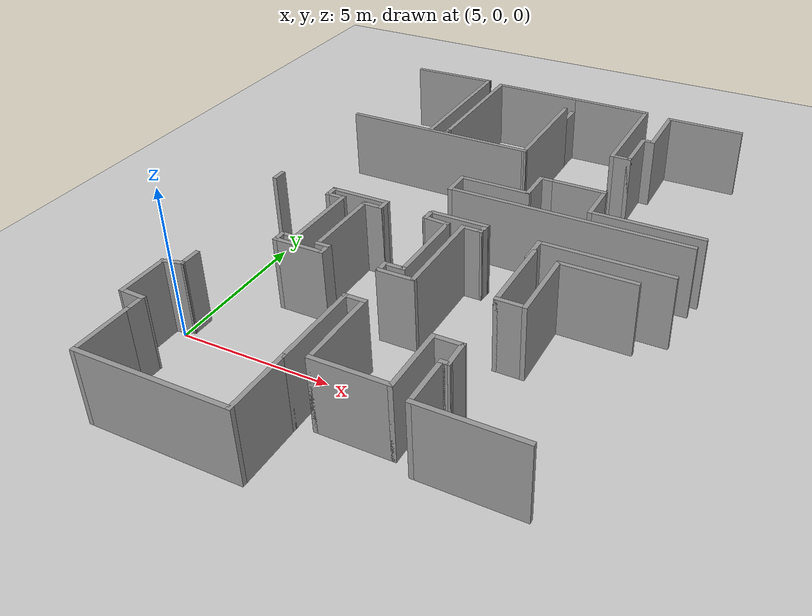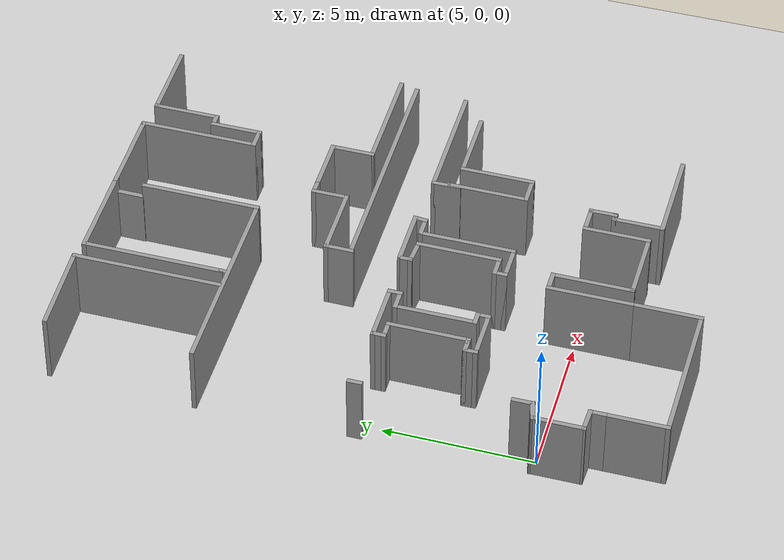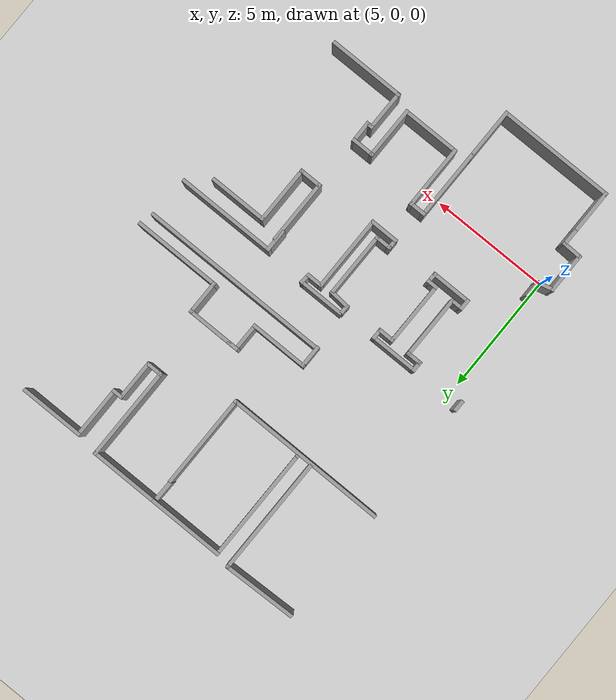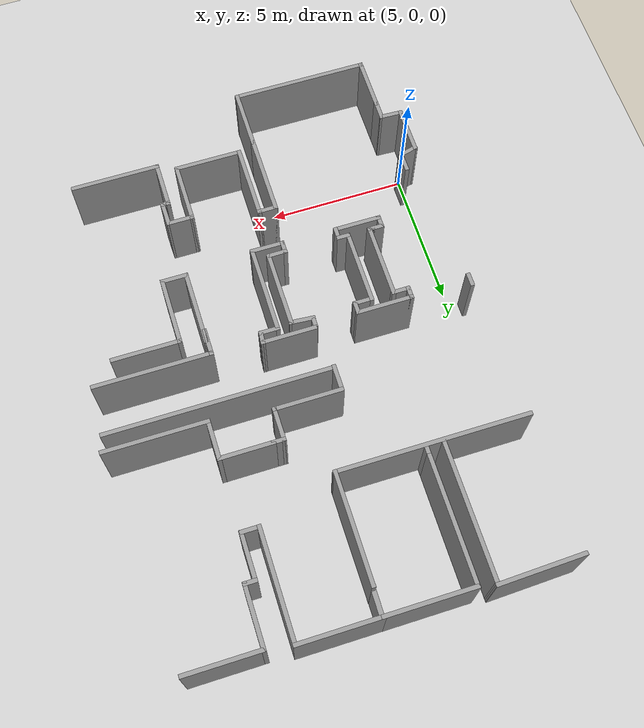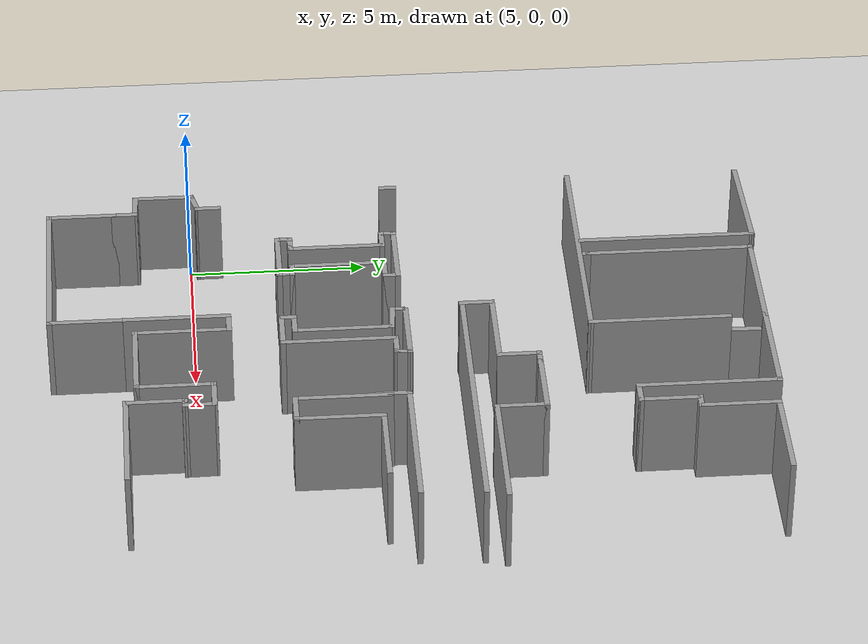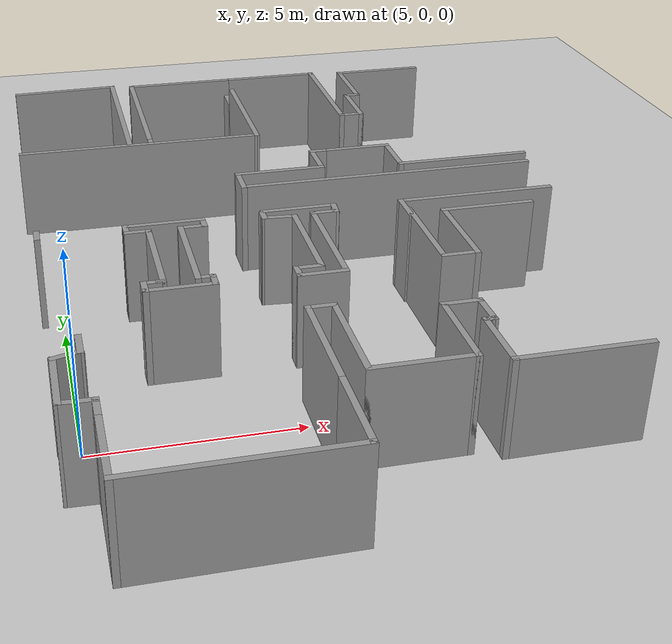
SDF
<sdf version="1.7">
 <world name="default">
  <model name="ground_plane">
   <static>1</static>
   <link name="link">
    <collision name="collision">
     <geometry><plane><normal>0 0 1</normal><size>100 100</size></plane></geometry>
     <surface><friction><ode><mu>100</mu><mu2>50</mu2></ode></friction></surface>
    </collision>
    <visual name="visual">
     <geometry><plane><normal>0 0 1</normal><size>100 100</size></plane></geometry>
     <material>
      <script><uri>file://media/materials/scripts/gazebo.material</uri><name>Gazebo/Grey</name></script>
     </material>
    </visual>
    <velocity_decay><linear>0</linear><angular>0</angular></velocity_decay>
   </link>
  </model>
  <model name="HandMade">
   <pose>-0.902363 5.97176 0 0 -0 0</pose>
   <link name="Door_1">
    <collision name="Door_1_Collision">
     <geometry><box><size>0.9 0.17 2</size></box></geometry>
     <pose>0 0 1 0 -0 0</pose>
    </collision>
    <visual name="Door_1_Visual">
     <pose>0 0 1 0 -0 0</pose>
     <geometry><box><size>0.9 0.17 2</size></box></geometry>
     <material>
      <script><uri>file://media/materials/scripts/gazebo.material</uri><name>Gazebo/Grey</name></script>
     </material>
    </visual>
    <pose>12.0346 9.32077 0 0 -0 -1.58398</pose>
   </link>
   <link name="Wall_112">
    <collision name="Wall_112_Collision">
     <geometry><box><size>6.91303 0.15 2.5</size></box></geometry>
     <pose>0 0 1.25 0 -0 0</pose>
    </collision>
    <visual name="Wall_112_Visual">
     <pose>0 0 1.25 0 -0 0</pose>
     <geometry><box><size>6.91303 0.15 2.5</size></box></geometry>
     <material>
      <script><uri>file://media/materials/scripts/gazebo.material</uri><name>Gazebo/Grey</name></script>
      <ambient>1 1 1 1</ambient>
     </material>
     <meta><layer>0</layer></meta>
    </visual>
    <pose>8.66504 4.98237 0 0 -0 -0.002699</pose>
   </link>
   <link name="Wall_114">
    <collision name="Wall_114_Collision">
     <geometry><box><size>3.25 0.15 2.5</size></box></geometry>
     <pose>0 0 1.25 0 -0 0</pose>
    </collision>
    <visual name="Wall_114_Visual">
     <pose>0 0 1.25 0 -0 0</pose>
     <geometry><box><size>3.25 0.15 2.5</size></box></geometry>
     <material>
      <script><uri>file://media/materials/scripts/gazebo.material</uri><name>Gazebo/Grey</name></script>
      <ambient>1 1 1 1</ambient>
     </material>
     <meta><layer>0</layer></meta>
    </visual>
    <pose>10.4965 9.82324 0 0 -0 3.14159</pose>
   </link>
   <link name="Wall_115">
    <collision name="Wall_115_Collision">
     <geometry><box><size>4.75 0.15 2.5</size></box></geometry>
     <pose>0 0 1.25 0 -0 0</pose>
    </collision>
    <visual name="Wall_115_Visual">
     <pose>0 0 1.25 0 -0 0</pose>
     <geometry><box><size>4.75 0.15 2.5</size></box></geometry>
     <material>
      <script><uri>file://media/materials/scripts/gazebo.material</uri><name>Gazebo/Grey</name></script>
      <ambient>1 1 1 1</ambient>
     </material>
     <meta><layer>0</layer></meta>
    </visual>
    <pose>8.94654 7.52324 0 0 -0 -1.5708</pose>
   </link>
   <link name="Wall_116">
    <collision name="Wall_116_Collision">
     <geometry><box><size>0.25 0.15 2.5</size></box></geometry>
     <pose>0 0 1.25 0 -0 0</pose>
    </collision>
    <visual name="Wall_116_Visual">
     <pose>0 0 1.25 0 -0 0</pose>
     <geometry><box><size>0.25 0.15 2.5</size></box></geometry>
     <material>
      <script><uri>file://media/materials/scripts/gazebo.material</uri><name>Gazebo/Grey</name></script>
      <ambient>1 1 1 1</ambient>
     </material>
     <meta><layer>0</layer></meta>
    </visual>
    <pose>8.94654 5.17324 0 0 -0 -1.5708</pose>
   </link>
   <link name="Wall_118">
    <collision name="Wall_118_Collision">
     <geometry><box><size>3.13479 0.15 2.5</size></box></geometry>
     <pose>0 0 1.25 0 -0 0</pose>
    </collision>
    <visual name="Wall_118_Visual">
     <pose>0 0 1.25 0 -0 0</pose>
     <geometry><box><size>3.13479 0.15 2.5</size></box></geometry>
     <material>
      <script><uri>file://media/materials/scripts/gazebo.material</uri><name>Gazebo/Grey</name></script>
      <ambient>1 1 1 1</ambient>
     </material>
     <meta><layer>0</layer></meta>
    </visual>
    <pose>6.84327 9.91326 0 0 -0 0.030417</pose>
   </link>
   <link name="Wall_119">
    <collision name="Wall_119_Collision">
     <geometry><box><size>5 0.15 2.5</size></box></geometry>
     <pose>0 0 1.25 0 -0 0</pose>
    </collision>
    <visual name="Wall_119_Visual">
     <pose>0 0 1.25 0 -0 0</pose>
     <geometry><box><size>5 0.15 2.5</size></box></geometry>
     <material>
      <script><uri>file://media/materials/scripts/gazebo.material</uri><name>Gazebo/Grey</name></script>
      <ambient>1 1 1 1</ambient>
     </material>
     <meta><layer>0</layer></meta>
    </visual>
    <pose>8.33523 7.51431 0 0 -0 -1.5708</pose>
   </link>
   <link name="Wall_123">
    <collision name="Wall_123_Collision">
     <geometry><box><size>4 0.15 2.5</size></box></geometry>
     <pose>0 0 1.25 0 -0 0</pose>
    </collision>
    <visual name="Wall_123_Visual">
     <pose>0 0 1.25 0 -0 0</pose>
     <geometry><box><size>4 0.15 2.5</size></box></geometry>
     <material>
      <script><uri>file://media/materials/scripts/gazebo.material</uri><name>Gazebo/Grey</name></script>
      <ambient>1 1 1 1</ambient>
     </material>
     <meta><layer>0</layer></meta>
    </visual>
    <pose>12.0465 6.89824 0 0 -0 1.5708</pose>
   </link>
   <link name="Wall_125">
    <collision name="Wall_125_Collision">
     <geometry><box><size>3 0.15 2.5</size></box></geometry>
     <pose>0 0 1.25 0 -0 0</pose>
    </collision>
    <visual name="Wall_125_Visual">
     <pose>0 0 1.25 0 -0 0</pose>
     <geometry><box><size>3 0.15 2.5</size></box></geometry>
     <material>
      <script><uri>file://media/materials/scripts/gazebo.material</uri><name>Gazebo/Grey</name></script>
      <ambient>1 1 1 1</ambient>
     </material>
     <meta><layer>0</layer></meta>
    </visual>
    <pose>13.4715 9.82324 0 0 -0 0</pose>
   </link>
   <link name="Wall_126">
    <collision name="Wall_126_Collision">
     <geometry><box><size>4 0.15 2.5</size></box></geometry>
     <pose>0 0 1.25 0 -0 0</pose>
    </collision>
    <visual name="Wall_126_Visual">
     <pose>0 0 1.25 0 -0 0</pose>
     <geometry><box><size>4 0.15 2.5</size></box></geometry>
     <material>
      <script><uri>file://media/materials/scripts/gazebo.material</uri><name>Gazebo/Grey</name></script>
      <ambient>1 1 1 1</ambient>
     </material>
     <meta><layer>0</layer></meta>
    </visual>
    <pose>14.8965 7.89824 0 0 -0 -1.5708</pose>
   </link>
   <link name="Wall_127">
    <collision name="Wall_127_Collision">
     <geometry><box><size>0.75 0.15 2.5</size></box></geometry>
     <pose>0 0 1.25 0 -0 0</pose>
    </collision>
    <visual name="Wall_127_Visual">
     <pose>0 0 1.25 0 -0 0</pose>
     <geometry><box><size>0.75 0.15 2.5</size></box></geometry>
     <material>
      <script><uri>file://media/materials/scripts/gazebo.material</uri><name>Gazebo/Grey</name></script>
      <ambient>1 1 1 1</ambient>
     </material>
     <meta><layer>0</layer></meta>
    </visual>
    <pose>15.1965 5.97324 0 0 -0 0</pose>
   </link>
   <link name="Wall_128">
    <collision name="Wall_128_Collision">
     <geometry><box><size>1.75 0.15 2.5</size></box></geometry>
     <pose>0 0 1.25 0 -0 0</pose>
    </collision>
    <visual name="Wall_128_Visual">
     <pose>0 0 1.25 0 -0 0</pose>
     <geometry><box><size>1.75 0.15 2.5</size></box></geometry>
     <material>
      <script><uri>file://media/materials/scripts/gazebo.material</uri><name>Gazebo/Grey</name></script>
      <ambient>1 1 1 1</ambient>
     </material>
     <meta><layer>0</layer></meta>
    </visual>
    <pose>15.4965 6.77324 0 0 -0 1.5708</pose>
   </link>
   <link name="Wall_129">
    <collision name="Wall_129_Collision">
     <geometry><box><size>0.5 0.15 2.5</size></box></geometry>
     <pose>0 0 1.25 0 -0 0</pose>
    </collision>
    <visual name="Wall_129_Visual">
     <pose>0 0 1.25 0 -0 0</pose>
     <geometry><box><size>0.5 0.15 2.5</size></box></geometry>
     <material>
      <script><uri>file://media/materials/scripts/gazebo.material</uri><name>Gazebo/Grey</name></script>
      <ambient>1 1 1 1</ambient>
     </material>
     <meta><layer>0</layer></meta>
    </visual>
    <pose>15.6715 7.57324 0 0 -0 0</pose>
   </link>
   <link name="Wall_130">
    <collision name="Wall_130_Collision">
     <geometry><box><size>2.25 0.15 2.5</size></box></geometry>
     <pose>0 0 1.25 0 -0 0</pose>
    </collision>
    <visual name="Wall_130_Visual">
     <pose>0 0 1.25 0 -0 0</pose>
     <geometry><box><size>2.25 0.15 2.5</size></box></geometry>
     <material>
      <script><uri>file://media/materials/scripts/gazebo.material</uri><name>Gazebo/Grey</name></script>
      <ambient>1 1 1 1</ambient>
     </material>
     <meta><layer>0</layer></meta>
    </visual>
    <pose>15.8465 8.62325 0 0 -0 1.5708</pose>
   </link>
   <link name="Wall_131">
    <collision name="Wall_131_Collision">
     <geometry><box><size>2.75 0.15 2.5</size></box></geometry>
     <pose>0 0 1.25 0 -0 0</pose>
    </collision>
    <visual name="Wall_131_Visual">
     <pose>0 0 1.25 0 -0 0</pose>
     <geometry><box><size>2.75 0.15 2.5</size></box></geometry>
     <material>
      <script><uri>file://media/materials/scripts/gazebo.material</uri><name>Gazebo/Grey</name></script>
      <ambient>1 1 1 1</ambient>
     </material>
     <meta><layer>0</layer></meta>
    </visual>
    <pose>17.1465 9.67324 0 0 -0 0</pose>
   </link>
   <link name="Wall_194">
    <collision name="Wall_194_Collision">
     <geometry><box><size>2.25 0.15 2.5</size></box></geometry>
     <pose>0 0 1.25 0 -0 0</pose>
    </collision>
    <visual name="Wall_194_Visual">
     <pose>0 0 1.25 0 -0 0</pose>
     <geometry><box><size>2.25 0.15 2.5</size></box></geometry>
     <material>
      <script><uri>file://media/materials/scripts/gazebo.material</uri><name>Gazebo/Grey</name></script>
      <ambient>1 1 1 1</ambient>
     </material>
     <meta><layer>0</layer></meta>
    </visual>
    <pose>11.0665 -8.9109 0 0 -0 -1.5708</pose>
   </link>
   <link name="Wall_195">
    <collision name="Wall_195_Collision">
     <geometry><box><size>5 0.15 2.5</size></box></geometry>
     <pose>0 0 1.25 0 -0 0</pose>
    </collision>
    <visual name="Wall_195_Visual">
     <pose>0 0 1.25 0 -0 0</pose>
     <geometry><box><size>5 0.15 2.5</size></box></geometry>
     <material>
      <script><uri>file://media/materials/scripts/gazebo.material</uri><name>Gazebo/Grey</name></script>
      <ambient>1 1 1 1</ambient>
     </material>
     <meta><layer>0</layer></meta>
    </visual>
    <pose>8.64151 -9.9609 0 0 -0 3.14159</pose>
   </link>
   <link name="Wall_196">
    <collision name="Wall_196_Collision">
     <geometry><box><size>2 0.15 2.5</size></box></geometry>
     <pose>0 0 1.25 0 -0 0</pose>
    </collision>
    <visual name="Wall_196_Visual">
     <pose>0 0 1.25 0 -0 0</pose>
     <geometry><box><size>2 0.15 2.5</size></box></geometry>
     <material>
      <script><uri>file://media/materials/scripts/gazebo.material</uri><name>Gazebo/Grey</name></script>
      <ambient>1 1 1 1</ambient>
     </material>
     <meta><layer>0</layer></meta>
    </visual>
    <pose>6.21651 -9.0359 0 0 -0 1.5708</pose>
   </link>
   <link name="Wall_200">
    <collision name="Wall_200_Collision">
     <geometry><box><size>3 0.15 2.5</size></box></geometry>
     <pose>0 0 1.25 0 -0 0</pose>
    </collision>
    <visual name="Wall_200_Visual">
     <pose>0 0 1.25 0 -0 0</pose>
     <geometry><box><size>3 0.15 2.5</size></box></geometry>
     <material>
      <script><uri>file://media/materials/scripts/gazebo.material</uri><name>Gazebo/Grey</name></script>
      <ambient>1 1 1 1</ambient>
     </material>
     <meta><layer>0</layer></meta>
    </visual>
    <pose>11.0665 -6.4359 0 0 -0 1.5708</pose>
   </link>
   <link name="Wall_201">
    <collision name="Wall_201_Collision">
     <geometry><box><size>0.75 0.15 2.5</size></box></geometry>
     <pose>0 0 1.25 0 -0 0</pose>
    </collision>
    <visual name="Wall_201_Visual">
     <pose>0 0 1.25 0 -0 0</pose>
     <geometry><box><size>0.75 0.15 2.5</size></box></geometry>
     <material>
      <script><uri>file://media/materials/scripts/gazebo.material</uri><name>Gazebo/Grey</name></script>
      <ambient>1 1 1 1</ambient>
     </material>
     <meta><layer>0</layer></meta>
    </visual>
    <pose>11.3665 -5.0109 0 0 -0 0</pose>
   </link>
   <link name="Wall_202">
    <collision name="Wall_202_Collision">
     <geometry><box><size>2.75 0.15 2.5</size></box></geometry>
     <pose>0 0 1.25 0 -0 0</pose>
    </collision>
    <visual name="Wall_202_Visual">
     <pose>0 0 1.25 0 -0 0</pose>
     <geometry><box><size>2.75 0.15 2.5</size></box></geometry>
     <material>
      <script><uri>file://media/materials/scripts/gazebo.material</uri><name>Gazebo/Grey</name></script>
      <ambient>1 1 1 1</ambient>
     </material>
     <meta><layer>0</layer></meta>
    </visual>
    <pose>11.6665 -6.3109 0 0 -0 -1.5708</pose>
   </link>
   <link name="Wall_219">
    <collision name="Wall_219_Collision">
     <geometry><box><size>0.75 0.15 2.5</size></box></geometry>
     <pose>0 0 1.25 0 -0 0</pose>
    </collision>
    <visual name="Wall_219_Visual">
     <pose>0 0 1.25 0 -0 0</pose>
     <geometry><box><size>0.75 0.15 2.5</size></box></geometry>
     <material>
      <script><uri>file://media/materials/scripts/gazebo.material</uri><name>Gazebo/Grey</name></script>
      <ambient>1 1 1 1</ambient>
     </material>
     <meta><layer>0</layer></meta>
    </visual>
    <pose>6.06569 -5.42767 0 0 -0 -1.5708</pose>
   </link>
   <link name="Wall_220">
    <collision name="Wall_220_Collision">
     <geometry><box><size>0.75 0.15 2.5</size></box></geometry>
     <pose>0 0 1.25 0 -0 0</pose>
    </collision>
    <visual name="Wall_220_Visual">
     <pose>0 0 1.25 0 -0 0</pose>
     <geometry><box><size>0.75 0.15 2.5</size></box></geometry>
     <material>
      <script><uri>file://media/materials/scripts/gazebo.material</uri><name>Gazebo/Grey</name></script>
      <ambient>1 1 1 1</ambient>
     </material>
     <meta><layer>0</layer></meta>
    </visual>
    <pose>5.77592 -5.80531 0 0 -0 -2.87979</pose>
   </link>
   <link name="Wall_221">
    <collision name="Wall_221_Collision">
     <geometry><box><size>1.75 0.15 2.5</size></box></geometry>
     <pose>0 0 1.25 0 -0 0</pose>
    </collision>
    <visual name="Wall_221_Visual">
     <pose>0 0 1.25 0 -0 0</pose>
     <geometry><box><size>1.75 0.15 2.5</size></box></geometry>
     <material>
      <script><uri>file://media/materials/scripts/gazebo.material</uri><name>Gazebo/Grey</name></script>
      <ambient>1 1 1 1</ambient>
     </material>
     <meta><layer>0</layer></meta>
    </visual>
    <pose>5.48614 -6.68296 0 0 -0 -1.5708</pose>
   </link>
   <link name="Wall_222">
    <collision name="Wall_222_Collision">
     <geometry><box><size>0.880906 0.15 2.5</size></box></geometry>
     <pose>0 0 1.25 0 -0 0</pose>
    </collision>
    <visual name="Wall_222_Visual">
     <pose>0 0 1.25 0 -0 0</pose>
     <geometry><box><size>0.880906 0.15 2.5</size></box></geometry>
     <material>
      <script><uri>file://media/materials/scripts/gazebo.material</uri><name>Gazebo/Grey</name></script>
      <ambient>1 1 1 1</ambient>
     </material>
     <meta><layer>0</layer></meta>
    </visual>
    <pose>5.85133 -7.49693 0 0 -0 -0.038236</pose>
   </link>
   <link name="Wall_223">
    <collision name="Wall_223_Collision">
     <geometry><box><size>0.75 0.15 2.5</size></box></geometry>
     <pose>0 0 1.25 0 -0 0</pose>
    </collision>
    <visual name="Wall_223_Visual">
     <pose>0 0 1.25 0 -0 0</pose>
     <geometry><box><size>0.75 0.15 2.5</size></box></geometry>
     <material>
      <script><uri>file://media/materials/scripts/gazebo.material</uri><name>Gazebo/Grey</name></script>
      <ambient>1 1 1 1</ambient>
     </material>
     <meta><layer>0</layer></meta>
    </visual>
    <pose>6.21651 -7.8109 0 0 -0 -1.5708</pose>
   </link>
   <link name="Wall_363">
    <collision name="Wall_363_Collision">
     <geometry><box><size>0.5 0.15 2.5</size></box></geometry>
     <pose>0 0 1.25 0 -0 0</pose>
    </collision>
    <visual name="Wall_363_Visual">
     <pose>0 0 1.25 0 -0 0</pose>
     <geometry><box><size>0.5 0.15 2.5</size></box></geometry>
     <material>
      <script><uri>file://media/materials/scripts/gazebo.material</uri><name>Gazebo/Grey</name></script>
      <ambient>1 1 1 1</ambient>
     </material>
     <meta><layer>0</layer></meta>
    </visual>
    <pose>5.44326 -0.229085 0 0 -0 1.5708</pose>
   </link>
   <link name="Wall_366">
    <collision name="Wall_366_Collision">
     <geometry><box><size>2.08578 0.15 2.5</size></box></geometry>
     <pose>0 0 1.25 0 -0 0</pose>
    </collision>
    <visual name="Wall_366_Visual">
     <pose>0 0 1.25 0 -0 0</pose>
     <geometry><box><size>2.08578 0.15 2.5</size></box></geometry>
     <material>
      <script><uri>file://media/materials/scripts/gazebo.material</uri><name>Gazebo/Grey</name></script>
      <ambient>1 1 1 1</ambient>
     </material>
     <meta><layer>0</layer></meta>
    </visual>
    <pose>8.57729 -0.204574 0 0 -0 0</pose>
   </link>
   <link name="Wall_367">
    <collision name="Wall_367_Collision">
     <geometry><box><size>0.5 0.15 2.5</size></box></geometry>
     <pose>0 0 1.25 0 -0 0</pose>
    </collision>
    <visual name="Wall_367_Visual">
     <pose>0 0 1.25 0 -0 0</pose>
     <geometry><box><size>0.5 0.15 2.5</size></box></geometry>
     <material>
      <script><uri>file://media/materials/scripts/gazebo.material</uri><name>Gazebo/Grey</name></script>
      <ambient>1 1 1 1</ambient>
     </material>
     <meta><layer>0</layer></meta>
    </visual>
    <pose>9.54517 -0.379574 0 0 -0 -1.5708</pose>
   </link>
   <link name="Wall_368">
    <collision name="Wall_368_Collision">
     <geometry><box><size>0.75 0.15 2.5</size></box></geometry>
     <pose>0 0 1.25 0 -0 0</pose>
    </collision>
    <visual name="Wall_368_Visual">
     <pose>0 0 1.25 0 -0 0</pose>
     <geometry><box><size>0.75 0.15 2.5</size></box></geometry>
     <material>
      <script><uri>file://media/materials/scripts/gazebo.material</uri><name>Gazebo/Grey</name></script>
      <ambient>1 1 1 1</ambient>
     </material>
     <meta><layer>0</layer></meta>
    </visual>
    <pose>9.24517 -0.554574 0 0 -0 3.14159</pose>
   </link>
   <link name="Wall_369">
    <collision name="Wall_369_Collision">
     <geometry><box><size>2.75 0.15 2.5</size></box></geometry>
     <pose>0 0 1.25 0 -0 0</pose>
    </collision>
    <visual name="Wall_369_Visual">
     <pose>0 0 1.25 0 -0 0</pose>
     <geometry><box><size>2.75 0.15 2.5</size></box></geometry>
     <material>
      <script><uri>file://media/materials/scripts/gazebo.material</uri><name>Gazebo/Grey</name></script>
      <ambient>1 1 1 1</ambient>
     </material>
     <meta><layer>0</layer></meta>
    </visual>
    <pose>8.94517 -1.85457 0 0 -0 -1.5708</pose>
   </link>
   <link name="Wall_370">
    <collision name="Wall_370_Collision">
     <geometry><box><size>0.5 0.15 2.5</size></box></geometry>
     <pose>0 0 1.25 0 -0 0</pose>
    </collision>
    <visual name="Wall_370_Visual">
     <pose>0 0 1.25 0 -0 0</pose>
     <geometry><box><size>0.5 0.15 2.5</size></box></geometry>
     <material>
      <script><uri>file://media/materials/scripts/gazebo.material</uri><name>Gazebo/Grey</name></script>
      <ambient>1 1 1 1</ambient>
     </material>
     <meta><layer>0</layer></meta>
    </visual>
    <pose>9.12017 -3.15457 0 0 -0 0</pose>
   </link>
   <link name="Wall_371">
    <collision name="Wall_371_Collision">
     <geometry><box><size>0.5 0.15 2.5</size></box></geometry>
     <pose>0 0 1.25 0 -0 0</pose>
    </collision>
    <visual name="Wall_371_Visual">
     <pose>0 0 1.25 0 -0 0</pose>
     <geometry><box><size>0.5 0.15 2.5</size></box></geometry>
     <material>
      <script><uri>file://media/materials/scripts/gazebo.material</uri><name>Gazebo/Grey</name></script>
      <ambient>1 1 1 1</ambient>
     </material>
     <meta><layer>0</layer></meta>
    </visual>
    <pose>9.29517 -3.32957 0 0 -0 -1.5708</pose>
   </link>
   <link name="Wall_372">
    <collision name="Wall_372_Collision">
     <geometry><box><size>1.75 0.15 2.5</size></box></geometry>
     <pose>0 0 1.25 0 -0 0</pose>
    </collision>
    <visual name="Wall_372_Visual">
     <pose>0 0 1.25 0 -0 0</pose>
     <geometry><box><size>1.75 0.15 2.5</size></box></geometry>
     <material>
      <script><uri>file://media/materials/scripts/gazebo.material</uri><name>Gazebo/Grey</name></script>
      <ambient>1 1 1 1</ambient>
     </material>
     <meta><layer>0</layer></meta>
    </visual>
    <pose>8.49517 -3.50457 0 0 -0 3.14159</pose>
   </link>
   <link name="Wall_373">
    <collision name="Wall_373_Collision">
     <geometry><box><size>0.5 0.15 2.5</size></box></geometry>
     <pose>0 0 1.25 0 -0 0</pose>
    </collision>
    <visual name="Wall_373_Visual">
     <pose>0 0 1.25 0 -0 0</pose>
     <geometry><box><size>0.5 0.15 2.5</size></box></geometry>
     <material>
      <script><uri>file://media/materials/scripts/gazebo.material</uri><name>Gazebo/Grey</name></script>
      <ambient>1 1 1 1</ambient>
     </material>
     <meta><layer>0</layer></meta>
    </visual>
    <pose>7.69517 -3.32957 0 0 -0 1.5708</pose>
   </link>
   <link name="Wall_374">
    <collision name="Wall_374_Collision">
     <geometry><box><size>0.5 0.15 2.5</size></box></geometry>
     <pose>0 0 1.25 0 -0 0</pose>
    </collision>
    <visual name="Wall_374_Visual">
     <pose>0 0 1.25 0 -0 0</pose>
     <geometry><box><size>0.5 0.15 2.5</size></box></geometry>
     <material>
      <script><uri>file://media/materials/scripts/gazebo.material</uri><name>Gazebo/Grey</name></script>
      <ambient>1 1 1 1</ambient>
     </material>
     <meta><layer>0</layer></meta>
    </visual>
    <pose>7.87017 -3.15457 0 0 -0 0</pose>
   </link>
   <link name="Wall_375">
    <collision name="Wall_375_Collision">
     <geometry><box><size>0.25 0.15 2.5</size></box></geometry>
     <pose>0 0 1.25 0 -0 0</pose>
    </collision>
    <visual name="Wall_375_Visual">
     <pose>0 0 1.25 0 -0 0</pose>
     <geometry><box><size>0.25 0.15 2.5</size></box></geometry>
     <material>
      <script><uri>file://media/materials/scripts/gazebo.material</uri><name>Gazebo/Grey</name></script>
      <ambient>1 1 1 1</ambient>
     </material>
     <meta><layer>0</layer></meta>
    </visual>
    <pose>8.09517 -3.15457 0 0 -0 0</pose>
   </link>
   <link name="Wall_376">
    <collision name="Wall_376_Collision">
     <geometry><box><size>2.75 0.15 2.5</size></box></geometry>
     <pose>0 0 1.25 0 -0 0</pose>
    </collision>
    <visual name="Wall_376_Visual">
     <pose>0 0 1.25 0 -0 0</pose>
     <geometry><box><size>2.75 0.15 2.5</size></box></geometry>
     <material>
      <script><uri>file://media/materials/scripts/gazebo.material</uri><name>Gazebo/Grey</name></script>
      <ambient>1 1 1 1</ambient>
     </material>
     <meta><layer>0</layer></meta>
    </visual>
    <pose>8.14517 -1.85457 0 0 -0 1.5708</pose>
   </link>
   <link name="Wall_377">
    <collision name="Wall_377_Collision">
     <geometry><box><size>0.685817 0.15 2.5</size></box></geometry>
     <pose>0 0 1.25 0 -0 0</pose>
    </collision>
    <visual name="Wall_377_Visual">
     <pose>0 0 1.25 0 -0 0</pose>
     <geometry><box><size>0.685817 0.15 2.5</size></box></geometry>
     <material>
      <script><uri>file://media/materials/scripts/gazebo.material</uri><name>Gazebo/Grey</name></script>
      <ambient>1 1 1 1</ambient>
     </material>
     <meta><layer>0</layer></meta>
    </visual>
    <pose>7.87729 -0.554574 0 0 -0 3.14159</pose>
   </link>
   <link name="Wall_378">
    <collision name="Wall_378_Collision">
     <geometry><box><size>0.5 0.15 2.5</size></box></geometry>
     <pose>0 0 1.25 0 -0 0</pose>
    </collision>
    <visual name="Wall_378_Visual">
     <pose>0 0 1.25 0 -0 0</pose>
     <geometry><box><size>0.5 0.15 2.5</size></box></geometry>
     <material>
      <script><uri>file://media/materials/scripts/gazebo.material</uri><name>Gazebo/Grey</name></script>
      <ambient>1 1 1 1</ambient>
     </material>
     <meta><layer>0</layer></meta>
    </visual>
    <pose>7.60941 -0.379574 0 0 -0 1.5708</pose>
   </link>
   <link name="Wall_380">
    <collision name="Wall_380_Collision">
     <geometry><box><size>2.75 0.15 2.5</size></box></geometry>
     <pose>0 0 1.25 0 -0 0</pose>
    </collision>
    <visual name="Wall_380_Visual">
     <pose>0 0 1.25 0 -0 0</pose>
     <geometry><box><size>2.75 0.15 2.5</size></box></geometry>
     <material>
      <script><uri>file://media/materials/scripts/gazebo.material</uri><name>Gazebo/Grey</name></script>
      <ambient>1 1 1 1</ambient>
     </material>
     <meta><layer>0</layer></meta>
    </visual>
    <pose>14.8083 -2.04285 0 0 -0 -1.5708</pose>
   </link>
   <link name="Wall_381">
    <collision name="Wall_381_Collision">
     <geometry><box><size>1 0.15 2.5</size></box></geometry>
     <pose>0 0 1.25 0 -0 0</pose>
    </collision>
    <visual name="Wall_381_Visual">
     <pose>0 0 1.25 0 -0 0</pose>
     <geometry><box><size>1 0.15 2.5</size></box></geometry>
     <material>
      <script><uri>file://media/materials/scripts/gazebo.material</uri><name>Gazebo/Grey</name></script>
      <ambient>1 1 1 1</ambient>
     </material>
     <meta><layer>0</layer></meta>
    </visual>
    <pose>15.2333 -3.34285 0 0 -0 0</pose>
   </link>
   <link name="Wall_382">
    <collision name="Wall_382_Collision">
     <geometry><box><size>2.5 0.15 2.5</size></box></geometry>
     <pose>0 0 1.25 0 -0 0</pose>
    </collision>
    <visual name="Wall_382_Visual">
     <pose>0 0 1.25 0 -0 0</pose>
     <geometry><box><size>2.5 0.15 2.5</size></box></geometry>
     <material>
      <script><uri>file://media/materials/scripts/gazebo.material</uri><name>Gazebo/Grey</name></script>
      <ambient>1 1 1 1</ambient>
     </material>
     <meta><layer>0</layer></meta>
    </visual>
    <pose>15.6583 -2.16785 0 0 -0 1.5708</pose>
   </link>
   <link name="Wall_383">
    <collision name="Wall_383_Collision">
     <geometry><box><size>2.5 0.15 2.5</size></box></geometry>
     <pose>0 0 1.25 0 -0 0</pose>
    </collision>
    <visual name="Wall_383_Visual">
     <pose>0 0 1.25 0 -0 0</pose>
     <geometry><box><size>2.5 0.15 2.5</size></box></geometry>
     <material>
      <script><uri>file://media/materials/scripts/gazebo.material</uri><name>Gazebo/Grey</name></script>
      <ambient>1 1 1 1</ambient>
     </material>
     <meta><layer>0</layer></meta>
    </visual>
    <pose>16.8333 -0.992851 0 0 -0 0</pose>
   </link>
   <link name="Wall_387">
    <collision name="Wall_387_Collision">
     <geometry><box><size>4.25 0.15 2.5</size></box></geometry>
     <pose>0 0 1.25 0 -0 0</pose>
    </collision>
    <visual name="Wall_387_Visual">
     <pose>0 0 1.25 0 -0 0</pose>
     <geometry><box><size>4.25 0.15 2.5</size></box></geometry>
     <material>
      <script><uri>file://media/materials/scripts/gazebo.material</uri><name>Gazebo/Grey</name></script>
      <ambient>1 1 1 1</ambient>
     </material>
     <meta><layer>0</layer></meta>
    </visual>
    <pose>16.8083 -0.242851 0 0 -0 3.14159</pose>
   </link>
   <link name="Wall_388">
    <collision name="Wall_388_Collision">
     <geometry><box><size>1 0.15 2.5</size></box></geometry>
     <pose>0 0 1.25 0 -0 0</pose>
    </collision>
    <visual name="Wall_388_Visual">
     <pose>0 0 1.25 0 -0 0</pose>
     <geometry><box><size>1 0.15 2.5</size></box></geometry>
     <material>
      <script><uri>file://media/materials/scripts/gazebo.material</uri><name>Gazebo/Grey</name></script>
      <ambient>1 1 1 1</ambient>
     </material>
     <meta><layer>0</layer></meta>
    </visual>
    <pose>14.7583 -0.667851 0 0 -0 -1.5708</pose>
   </link>
   <link name="Wall_390">
    <collision name="Wall_390_Collision">
     <geometry><box><size>2 0.15 2.5</size></box></geometry>
     <pose>0 0 1.25 0 -0 0</pose>
    </collision>
    <visual name="Wall_390_Visual">
     <pose>0 0 1.25 0 -0 0</pose>
     <geometry><box><size>2 0.15 2.5</size></box></geometry>
     <material>
      <script><uri>file://media/materials/scripts/gazebo.material</uri><name>Gazebo/Grey</name></script>
      <ambient>1 1 1 1</ambient>
     </material>
     <meta><layer>0</layer></meta>
    </visual>
    <pose>12.0606 -0.102195 0 0 -0 0</pose>
   </link>
   <link name="Wall_391">
    <collision name="Wall_391_Collision">
     <geometry><box><size>0.501327 0.15 2.5</size></box></geometry>
     <pose>0 0 1.25 0 -0 0</pose>
    </collision>
    <visual name="Wall_391_Visual">
     <pose>0 0 1.25 0 -0 0</pose>
     <geometry><box><size>0.501327 0.15 2.5</size></box></geometry>
     <material>
      <script><uri>file://media/materials/scripts/gazebo.material</uri><name>Gazebo/Grey</name></script>
      <ambient>1 1 1 1</ambient>
     </material>
     <meta><layer>0</layer></meta>
    </visual>
    <pose>12.9703 -0.277195 0 0 -0 -1.65774</pose>
   </link>
   <link name="Wall_392">
    <collision name="Wall_392_Collision">
     <geometry><box><size>0.75 0.15 2.5</size></box></geometry>
     <pose>0 0 1.25 0 -0 0</pose>
    </collision>
    <visual name="Wall_392_Visual">
     <pose>0 0 1.25 0 -0 0</pose>
     <geometry><box><size>0.75 0.15 2.5</size></box></geometry>
     <material>
      <script><uri>file://media/materials/scripts/gazebo.material</uri><name>Gazebo/Grey</name></script>
      <ambient>1 1 1 1</ambient>
     </material>
     <meta><layer>0</layer></meta>
    </visual>
    <pose>12.655 -0.452195 0 0 -0 3.14159</pose>
   </link>
   <link name="Wall_393">
    <collision name="Wall_393_Collision">
     <geometry><box><size>3.25 0.15 2.5</size></box></geometry>
     <pose>0 0 1.25 0 -0 0</pose>
    </collision>
    <visual name="Wall_393_Visual">
     <pose>0 0 1.25 0 -0 0</pose>
     <geometry><box><size>3.25 0.15 2.5</size></box></geometry>
     <material>
      <script><uri>file://media/materials/scripts/gazebo.material</uri><name>Gazebo/Grey</name></script>
      <ambient>1 1 1 1</ambient>
     </material>
     <meta><layer>0</layer></meta>
    </visual>
    <pose>12.355 -2.00219 0 0 -0 -1.5708</pose>
   </link>
   <link name="Wall_394">
    <collision name="Wall_394_Collision">
     <geometry><box><size>1.25 0.15 2.5</size></box></geometry>
     <pose>0 0 1.25 0 -0 0</pose>
    </collision>
    <visual name="Wall_394_Visual">
     <pose>0 0 1.25 0 -0 0</pose>
     <geometry><box><size>1.25 0.15 2.5</size></box></geometry>
     <material>
      <script><uri>file://media/materials/scripts/gazebo.material</uri><name>Gazebo/Grey</name></script>
      <ambient>1 1 1 1</ambient>
     </material>
     <meta><layer>0</layer></meta>
    </visual>
    <pose>11.805 -3.5522 0 0 -0 3.14159</pose>
   </link>
   <link name="Wall_395">
    <collision name="Wall_395_Collision">
     <geometry><box><size>0.5 0.15 2.5</size></box></geometry>
     <pose>0 0 1.25 0 -0 0</pose>
    </collision>
    <visual name="Wall_395_Visual">
     <pose>0 0 1.25 0 -0 0</pose>
     <geometry><box><size>0.5 0.15 2.5</size></box></geometry>
     <material>
      <script><uri>file://media/materials/scripts/gazebo.material</uri><name>Gazebo/Grey</name></script>
      <ambient>1 1 1 1</ambient>
     </material>
     <meta><layer>0</layer></meta>
    </visual>
    <pose>11.255 -3.37719 0 0 -0 1.5708</pose>
   </link>
   <link name="Wall_396">
    <collision name="Wall_396_Collision">
     <geometry><box><size>0.75 0.15 2.5</size></box></geometry>
     <pose>0 0 1.25 0 -0 0</pose>
    </collision>
    <visual name="Wall_396_Visual">
     <pose>0 0 1.25 0 -0 0</pose>
     <geometry><box><size>0.75 0.15 2.5</size></box></geometry>
     <material>
      <script><uri>file://media/materials/scripts/gazebo.material</uri><name>Gazebo/Grey</name></script>
      <ambient>1 1 1 1</ambient>
     </material>
     <meta><layer>0</layer></meta>
    </visual>
    <pose>11.555 -3.2022 0 0 -0 0</pose>
   </link>
   <link name="Wall_397">
    <collision name="Wall_397_Collision">
     <geometry><box><size>2.83135 0.15 2.5</size></box></geometry>
     <pose>0 0 1.25 0 -0 0</pose>
    </collision>
    <visual name="Wall_397_Visual">
     <pose>0 0 1.25 0 -0 0</pose>
     <geometry><box><size>2.83135 0.15 2.5</size></box></geometry>
     <material>
      <script><uri>file://media/materials/scripts/gazebo.material</uri><name>Gazebo/Grey</name></script>
      <ambient>1 1 1 1</ambient>
     </material>
     <meta><layer>0</layer></meta>
    </visual>
    <pose>11.855 -1.86152 0 0 -0 1.5708</pose>
   </link>
   <link name="Wall_398">
    <collision name="Wall_398_Collision">
     <geometry><box><size>0.92528 0.15 2.5</size></box></geometry>
     <pose>0 0 1.25 0 -0 0</pose>
    </collision>
    <visual name="Wall_398_Visual">
     <pose>0 0 1.25 0 -0 0</pose>
     <geometry><box><size>0.92528 0.15 2.5</size></box></geometry>
     <material>
      <script><uri>file://media/materials/scripts/gazebo.material</uri><name>Gazebo/Grey</name></script>
      <ambient>1 1 1 1</ambient>
     </material>
     <meta><layer>0</layer></meta>
    </visual>
    <pose>11.4686 -0.490334 0 0 -0 3.06281</pose>
   </link>
   <link name="Wall_399">
    <collision name="Wall_399_Collision">
     <geometry><box><size>0.418647 0.15 2.5</size></box></geometry>
     <pose>0 0 1.25 0 -0 0</pose>
    </collision>
    <visual name="Wall_399_Visual">
     <pose>0 0 1.25 0 -0 0</pose>
     <geometry><box><size>0.418647 0.15 2.5</size></box></geometry>
     <material>
      <script><uri>file://media/materials/scripts/gazebo.material</uri><name>Gazebo/Grey</name></script>
      <ambient>1 1 1 1</ambient>
     </material>
     <meta><layer>0</layer></meta>
    </visual>
    <pose>11.0923 -0.325503 0 0 -0 1.5708</pose>
   </link>
   <link name="Wall_401">
    <collision name="Wall_401_Collision">
     <geometry><box><size>8 0.15 2.5</size></box></geometry>
     <pose>0 0 1.25 0 -0 0</pose>
    </collision>
    <visual name="Wall_401_Visual">
     <pose>0 0 1.25 0 -0 0</pose>
     <geometry><box><size>8 0.15 2.5</size></box></geometry>
     <material>
      <script><uri>file://media/materials/scripts/gazebo.material</uri><name>Gazebo/Grey</name></script>
      <ambient>1 1 1 1</ambient>
     </material>
     <meta><layer>0</layer></meta>
    </visual>
    <pose>15.0261 1.48906 0 0 -0 0</pose>
   </link>
   <link name="Wall_403">
    <collision name="Wall_403_Collision">
     <geometry><box><size>3.75 0.15 2.5</size></box></geometry>
     <pose>0 0 1.25 0 -0 0</pose>
    </collision>
    <visual name="Wall_403_Visual">
     <pose>0 0 1.25 0 -0 0</pose>
     <geometry><box><size>3.75 0.15 2.5</size></box></geometry>
     <material>
      <script><uri>file://media/materials/scripts/gazebo.material</uri><name>Gazebo/Grey</name></script>
      <ambient>1 1 1 1</ambient>
     </material>
     <meta><layer>0</layer></meta>
    </visual>
    <pose>17.3064 2.06861 0 0 -0 3.14159</pose>
   </link>
   <link name="Wall_404">
    <collision name="Wall_404_Collision">
     <geometry><box><size>1.5 0.15 2.5</size></box></geometry>
     <pose>0 0 1.25 0 -0 0</pose>
    </collision>
    <visual name="Wall_404_Visual">
     <pose>0 0 1.25 0 -0 0</pose>
     <geometry><box><size>1.5 0.15 2.5</size></box></geometry>
     <material>
      <script><uri>file://media/materials/scripts/gazebo.material</uri><name>Gazebo/Grey</name></script>
      <ambient>1 1 1 1</ambient>
     </material>
     <meta><layer>0</layer></meta>
    </visual>
    <pose>15.5064 2.74361 0 0 -0 1.5708</pose>
   </link>
   <link name="Wall_405">
    <collision name="Wall_405_Collision">
     <geometry><box><size>2 0.15 2.5</size></box></geometry>
     <pose>0 0 1.25 0 -0 0</pose>
    </collision>
    <visual name="Wall_405_Visual">
     <pose>0 0 1.25 0 -0 0</pose>
     <geometry><box><size>2 0.15 2.5</size></box></geometry>
     <material>
      <script><uri>file://media/materials/scripts/gazebo.material</uri><name>Gazebo/Grey</name></script>
      <ambient>1 1 1 1</ambient>
     </material>
     <meta><layer>0</layer></meta>
    </visual>
    <pose>14.5814 3.41861 0 0 -0 3.14159</pose>
   </link>
   <link name="Wall_406">
    <collision name="Wall_406_Collision">
     <geometry><box><size>0.5 0.15 2.5</size></box></geometry>
     <pose>0 0 1.25 0 -0 0</pose>
    </collision>
    <visual name="Wall_406_Visual">
     <pose>0 0 1.25 0 -0 0</pose>
     <geometry><box><size>0.5 0.15 2.5</size></box></geometry>
     <material>
      <script><uri>file://media/materials/scripts/gazebo.material</uri><name>Gazebo/Grey</name></script>
      <ambient>1 1 1 1</ambient>
     </material>
     <meta><layer>0</layer></meta>
    </visual>
    <pose>13.4814 3.41861 0 0 -0 3.14159</pose>
   </link>
   <link name="Wall_407">
    <collision name="Wall_407_Collision">
     <geometry><box><size>1.25 0.15 2.5</size></box></geometry>
     <pose>0 0 1.25 0 -0 0</pose>
    </collision>
    <visual name="Wall_407_Visual">
     <pose>0 0 1.25 0 -0 0</pose>
     <geometry><box><size>1.25 0.15 2.5</size></box></geometry>
     <material>
      <script><uri>file://media/materials/scripts/gazebo.material</uri><name>Gazebo/Grey</name></script>
      <ambient>1 1 1 1</ambient>
     </material>
     <meta><layer>0</layer></meta>
    </visual>
    <pose>13.3064 2.86861 0 0 -0 -1.5708</pose>
   </link>
   <link name="Wall_408">
    <collision name="Wall_408_Collision">
     <geometry><box><size>2.5 0.15 2.5</size></box></geometry>
     <pose>0 0 1.25 0 -0 0</pose>
    </collision>
    <visual name="Wall_408_Visual">
     <pose>0 0 1.25 0 -0 0</pose>
     <geometry><box><size>2.5 0.15 2.5</size></box></geometry>
     <material>
      <script><uri>file://media/materials/scripts/gazebo.material</uri><name>Gazebo/Grey</name></script>
      <ambient>1 1 1 1</ambient>
     </material>
     <meta><layer>0</layer></meta>
    </visual>
    <pose>12.1314 2.31861 0 0 -0 3.14159</pose>
   </link>
   <link name="Wall_409">
    <collision name="Wall_409_Collision">
     <geometry><box><size>1 0.15 2.5</size></box></geometry>
     <pose>0 0 1.25 0 -0 0</pose>
    </collision>
    <visual name="Wall_409_Visual">
     <pose>0 0 1.25 0 -0 0</pose>
     <geometry><box><size>1 0.15 2.5</size></box></geometry>
     <material>
      <script><uri>file://media/materials/scripts/gazebo.material</uri><name>Gazebo/Grey</name></script>
      <ambient>1 1 1 1</ambient>
     </material>
     <meta><layer>0</layer></meta>
    </visual>
    <pose>10.9564 1.89361 0 0 -0 -1.5708</pose>
   </link>
   <link name="Wall_436">
    <collision name="Wall_436_Collision">
     <geometry><box><size>3.25 0.15 2.5</size></box></geometry>
     <pose>0 0 1.25 0 -0 0</pose>
    </collision>
    <visual name="Wall_436_Visual">
     <pose>0 0 1.25 0 -0 0</pose>
     <geometry><box><size>3.25 0.15 2.5</size></box></geometry>
     <material>
      <script><uri>file://media/materials/scripts/gazebo.material</uri><name>Gazebo/Grey</name></script>
      <ambient>1 1 1 1</ambient>
     </material>
     <meta><layer>0</layer></meta>
    </visual>
    <pose>16.2311 -7.91574 0 0 -0 3.14159</pose>
   </link>
   <link name="Wall_437">
    <collision name="Wall_437_Collision">
     <geometry><box><size>1.75 0.15 2.5</size></box></geometry>
     <pose>0 0 1.25 0 -0 0</pose>
    </collision>
    <visual name="Wall_437_Visual">
     <pose>0 0 1.25 0 -0 0</pose>
     <geometry><box><size>1.75 0.15 2.5</size></box></geometry>
     <material>
      <script><uri>file://media/materials/scripts/gazebo.material</uri><name>Gazebo/Grey</name></script>
      <ambient>1 1 1 1</ambient>
     </material>
     <meta><layer>0</layer></meta>
    </visual>
    <pose>14.6811 -7.11574 0 0 -0 1.5708</pose>
   </link>
   <link name="Wall_439">
    <collision name="Wall_439_Collision">
     <geometry><box><size>2.5 0.15 2.5</size></box></geometry>
     <pose>0 0 1.25 0 -0 0</pose>
    </collision>
    <visual name="Wall_439_Visual">
     <pose>0 0 1.25 0 -0 0</pose>
     <geometry><box><size>2.5 0.15 2.5</size></box></geometry>
     <material>
      <script><uri>file://media/materials/scripts/gazebo.material</uri><name>Gazebo/Grey</name></script>
      <ambient>1 1 1 1</ambient>
     </material>
     <meta><layer>0</layer></meta>
    </visual>
    <pose>12.8415 -7.6109 0 0 -0 0</pose>
   </link>
   <link name="Wall_440">
    <collision name="Wall_440_Collision">
     <geometry><box><size>2.25 0.15 2.5</size></box></geometry>
     <pose>0 0 1.25 0 -0 0</pose>
    </collision>
    <visual name="Wall_440_Visual">
     <pose>0 0 1.25 0 -0 0</pose>
     <geometry><box><size>2.25 0.15 2.5</size></box></geometry>
     <material>
      <script><uri>file://media/materials/scripts/gazebo.material</uri><name>Gazebo/Grey</name></script>
      <ambient>1 1 1 1</ambient>
     </material>
     <meta><layer>0</layer></meta>
    </visual>
    <pose>14.0165 -6.5609 0 0 -0 1.5708</pose>
   </link>
   <link name="Wall_441">
    <collision name="Wall_441_Collision">
     <geometry><box><size>1 0.15 2.5</size></box></geometry>
     <pose>0 0 1.25 0 -0 0</pose>
    </collision>
    <visual name="Wall_441_Visual">
     <pose>0 0 1.25 0 -0 0</pose>
     <geometry><box><size>1 0.15 2.5</size></box></geometry>
     <material>
      <script><uri>file://media/materials/scripts/gazebo.material</uri><name>Gazebo/Grey</name></script>
      <ambient>1 1 1 1</ambient>
     </material>
     <meta><layer>0</layer></meta>
    </visual>
    <pose>14.4415 -5.5109 0 0 -0 0</pose>
   </link>
   <link name="Wall_444">
    <collision name="Wall_444_Collision">
     <geometry><box><size>0.25 0.15 2.5</size></box></geometry>
     <pose>0 0 1.25 0 -0 0</pose>
    </collision>
    <visual name="Wall_444_Visual">
     <pose>0 0 1.25 0 -0 0</pose>
     <geometry><box><size>0.25 0.15 2.5</size></box></geometry>
     <material>
      <script><uri>file://media/materials/scripts/gazebo.material</uri><name>Gazebo/Grey</name></script>
      <ambient>1 1 1 1</ambient>
     </material>
     <meta><layer>0</layer></meta>
    </visual>
    <pose>14.7311 -6.31574 0 0 -0 0</pose>
   </link>
   <link name="Wall_445">
    <collision name="Wall_445_Collision">
     <geometry><box><size>0.25 0.15 2.5</size></box></geometry>
     <pose>0 0 1.25 0 -0 0</pose>
    </collision>
    <visual name="Wall_445_Visual">
     <pose>0 0 1.25 0 -0 0</pose>
     <geometry><box><size>0.25 0.15 2.5</size></box></geometry>
     <material>
      <script><uri>file://media/materials/scripts/gazebo.material</uri><name>Gazebo/Grey</name></script>
      <ambient>1 1 1 1</ambient>
     </material>
     <meta><layer>0</layer></meta>
    </visual>
    <pose>14.8311 -6.31574 0 0 -0 0</pose>
   </link>
   <link name="Wall_446">
    <collision name="Wall_446_Collision">
     <geometry><box><size>0.954979 0.15 2.5</size></box></geometry>
     <pose>0 0 1.25 0 -0 0</pose>
    </collision>
    <visual name="Wall_446_Visual">
     <pose>0 0 1.25 0 -0 0</pose>
     <geometry><box><size>0.954979 0.15 2.5</size></box></geometry>
     <material>
      <script><uri>file://media/materials/scripts/gazebo.material</uri><name>Gazebo/Grey</name></script>
      <ambient>1 1 1 1</ambient>
     </material>
     <meta><layer>0</layer></meta>
    </visual>
    <pose>14.8738 -5.91332 0 0 -0 1.58886</pose>
   </link>
   <static>1</static>
  </model>
 </world>
</sdf>
